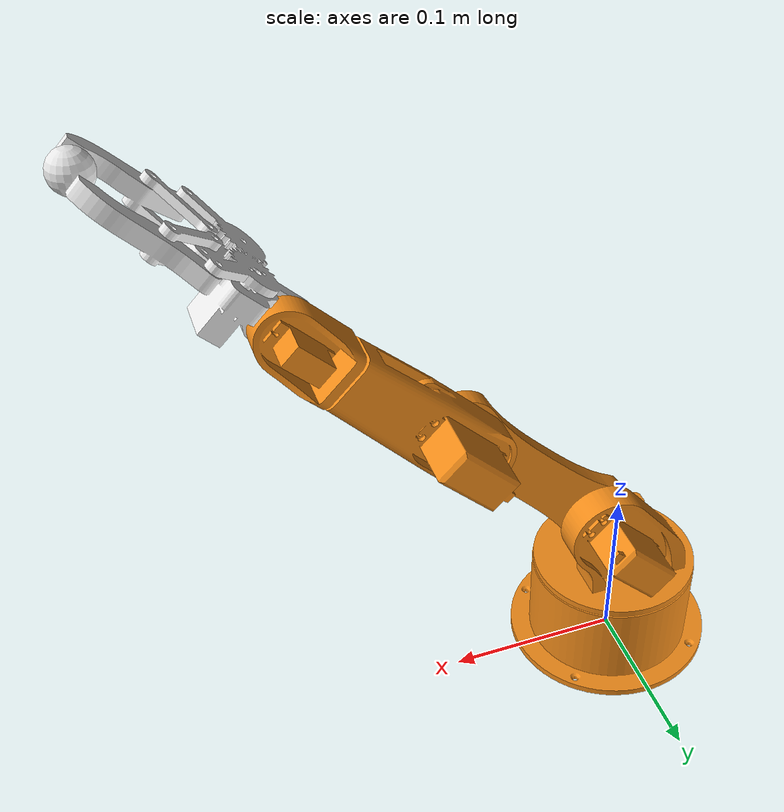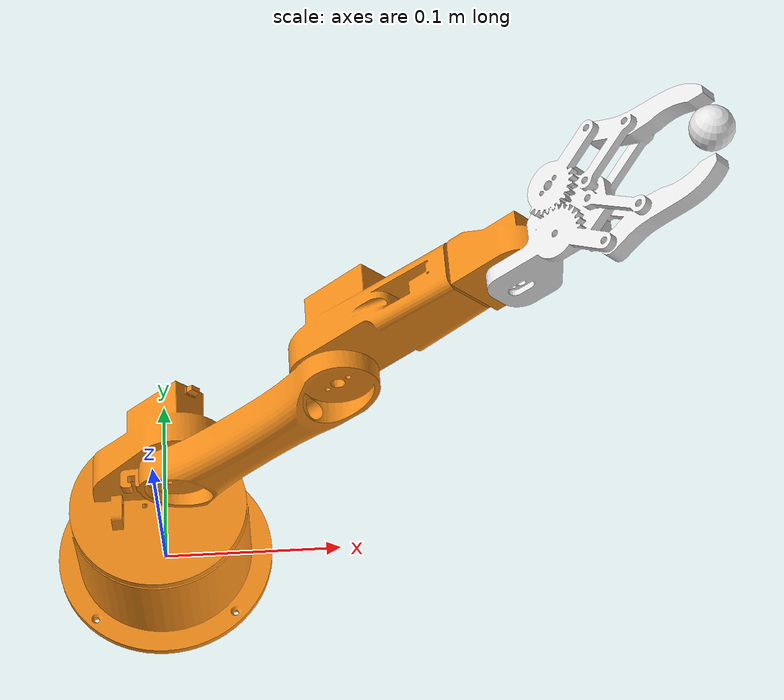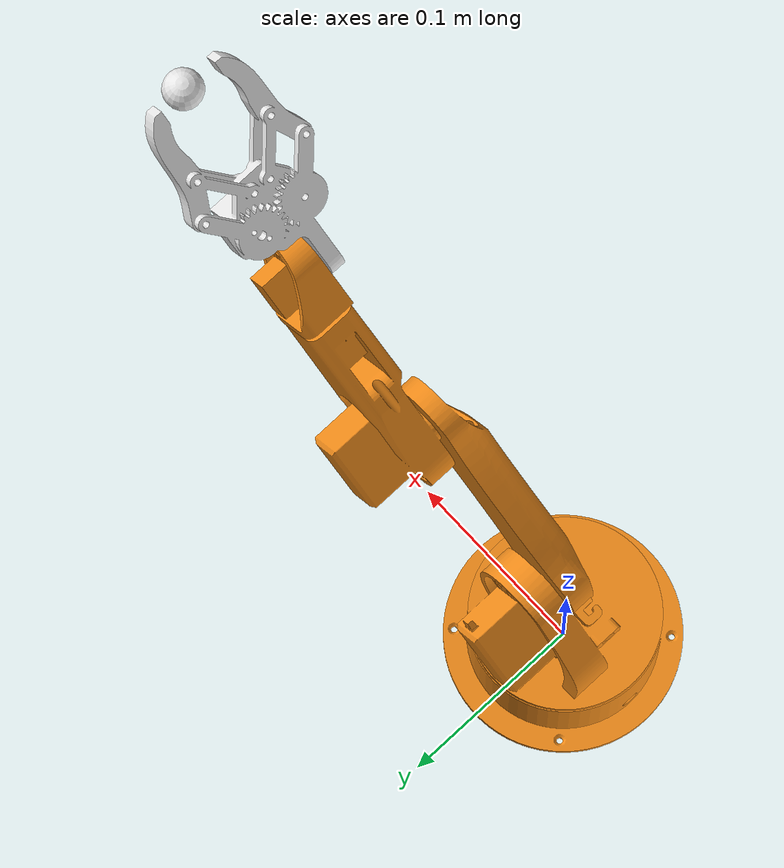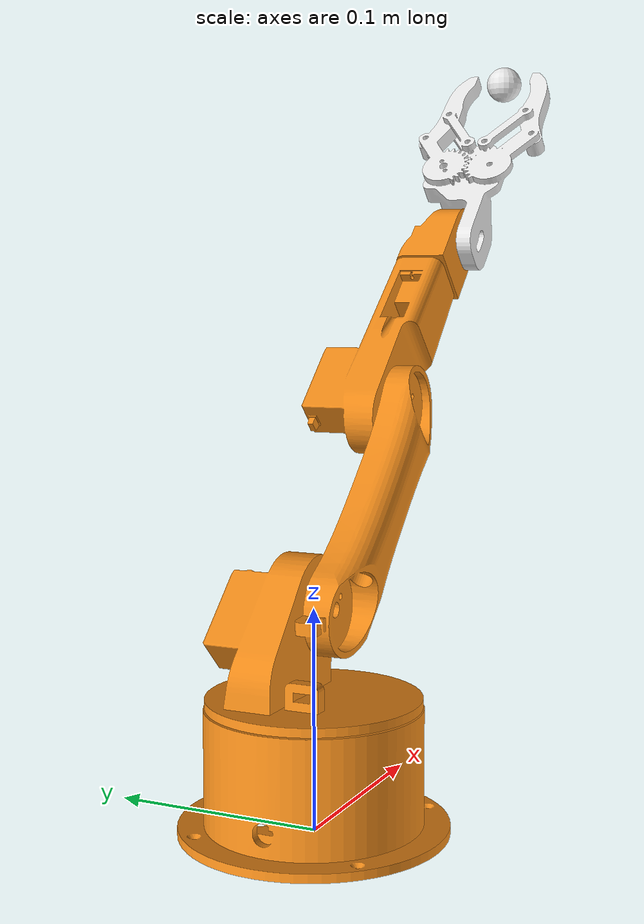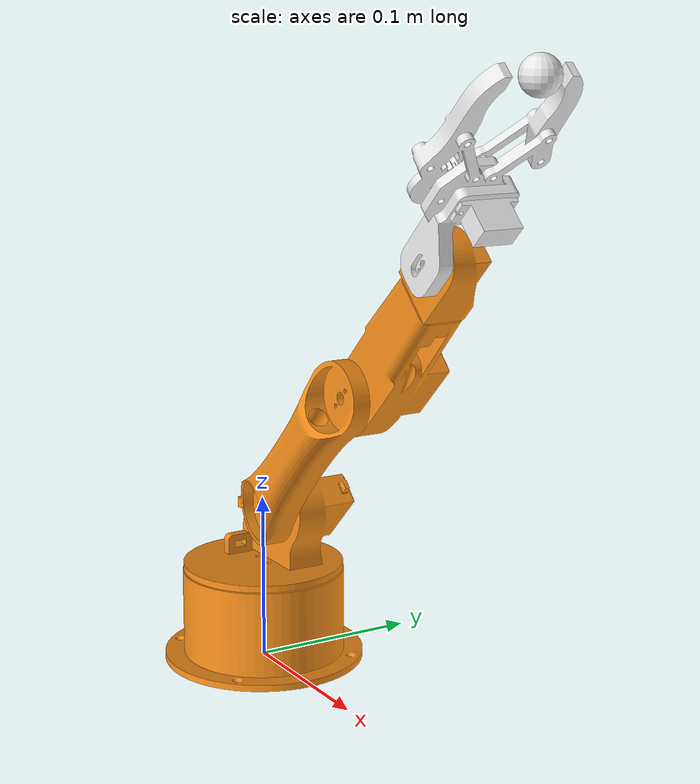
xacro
<?xml version="1.0" ?>
<robot name="robot_arm" xmlns:xacro="http://www.ros.org/wiki/xacro">

<xacro:include filename="$(find robot_arm_description)/urdf/materials.xacro" />
<xacro:include filename="$(find robot_arm_description)/urdf/robot_arm.trans" />
<xacro:include filename="$(find robot_arm_description)/urdf/robot_arm.gazebo" />
<link name="world"/>
<link name="base_link">
  <inertial>
    <origin xyz="0.0024607011550564013 6.455733015215033e-10 0.0241964579063244" rpy="0 0 0"/>
    <mass value="0.13769209908471902"/>
	<inertia ixx="0" iyy="0" izz="0" ixy="0" iyz="0" ixz="0"/>
  </inertial>
  <visual>
    <origin xyz="0 0 0" rpy="0 0 0"/>
    <geometry>
      <mesh filename="package://robot_arm_description/meshes/base_link.stl" scale="0.001 0.001 0.001"/>
    </geometry>
  </visual>
  <collision>
    <origin xyz="0 0 0" rpy="0 0 0"/>
    <geometry>
      <mesh filename="package://robot_arm_description/meshes/base_link.stl" scale="0.001 0.001 0.001"/>
    </geometry>
  </collision>
</link>

<link name="waist_1">
  <inertial>
    <origin xyz="0.00318602649091635 0.013877747356906538 0.022689548276635066" rpy="0 0 0"/>
    <mass value="0.10800159155411357"/>
    <inertia ixx="7.4e-05" iyy="7.5e-05" izz="7.9e-05" ixy="-3e-06" iyz="-1.4e-05" ixz="-1.1e-05"/>
  </inertial>
  <visual>
    <origin xyz="0.0 -0.0 -0.0566" rpy="0 0 0"/>
    <geometry>
      <mesh filename="package://robot_arm_description/meshes/waist_1.stl" scale="0.001 0.001 0.001"/>
    </geometry>
  </visual>
  <collision>
    <origin xyz="0.0 -0.0 -0.0566" rpy="0 0 0"/>
    <geometry>
      <mesh filename="package://robot_arm_description/meshes/waist_1.stl" scale="0.001 0.001 0.001"/>
    </geometry>
  </collision>
</link>

<link name="arm1_1">
  <inertial>
    <origin xyz="0.04133751613396197 -0.007768202679351965 0.04152238032046518" rpy="0 0 0"/>
    <mass value="0.505446604180645"/>
    <inertia ixx="0.000463" iyy="0.000903" izz="0.000474" ixy="-1e-06" iyz="-1e-06" ixz="-0.000396"/>
  </inertial>
  <visual>
    <origin xyz="-0.013742 -0.0018 -0.097053" rpy="0 0 0"/>
    <geometry>
      <mesh filename="package://robot_arm_description/meshes/arm1_1.stl" scale="0.001 0.001 0.001"/>
    </geometry>
  </visual>
  <collision>
    <origin xyz="-0.013742 -0.0018 -0.097053" rpy="0 0 0"/>
    <geometry>
      <mesh filename="package://robot_arm_description/meshes/arm1_1.stl" scale="0.001 0.001 0.001"/>
    </geometry>
  </collision>
</link>

<link name="arm2_1">
  <inertial>
    <origin xyz="0.021875310017626437 0.01671146992191255 0.022052083955411417" rpy="0 0 0"/>
    <mass value="0.09671321602707647"/>
    <inertia ixx="6.6e-05" iyy="0.000103" izz="6.6e-05" ixy="8e-06" iyz="8e-06" ixz="-4.3e-05"/>
  </inertial>
  <visual>
    <origin xyz="-0.098595 -0.0018 -0.181906" rpy="0 0 0"/>
    <geometry>
      <mesh filename="package://robot_arm_description/meshes/arm2_1.stl" scale="0.001 0.001 0.001"/>
    </geometry>
  </visual>
  <collision>
    <origin xyz="-0.098595 -0.0018 -0.181906" rpy="0 0 0"/>
    <geometry>
      <mesh filename="package://robot_arm_description/meshes/arm2_1.stl" scale="0.001 0.001 0.001"/>
    </geometry>
  </collision>
</link>

<link name="arm3_1">
  <inertial>
    <origin xyz="0.010225315136705243 -0.0030655198679682485 0.017341165454192953" rpy="0 0 0"/>
    <mass value="0.025038543338458022"/>
    <inertia ixx="4e-06" iyy="6e-06" izz="4e-06" ixy="0.0" iyz="0.0" ixz="-1e-06"/>
  </inertial>
  <visual>
    <origin xyz="-0.166936 -0.0125 -0.243106" rpy="0 0 0"/>
    <geometry>
      <mesh filename="package://robot_arm_description/meshes/arm3_1.stl" scale="0.001 0.001 0.001"/>
    </geometry>
  </visual>
  <collision>
    <origin xyz="-0.166936 -0.0125 -0.243106" rpy="0 0 0"/>
    <geometry>
      <mesh filename="package://robot_arm_description/meshes/arm3_1.stl" scale="0.001 0.001 0.001"/>
    </geometry>
  </collision>
</link>

<link name="gripper_1">
  <inertial>
    <origin xyz="0.028485280332901375 0.004846546679879509 0.04072672947992795" rpy="0 0 0"/>
    <mass value="0.044561931204964"/>
    <inertia ixx="4.2e-05" iyy="4.7e-05" izz="3.1e-05" ixy="-1e-06" iyz="-1e-06" ixz="-2e-05"/>
  </inertial>
  <visual>
    <origin xyz="-0.1832 0.00285 -0.266441" rpy="0 0 0"/>
    <geometry>
      <mesh filename="package://robot_arm_description/meshes/gripper_1.stl" scale="0.001 0.001 0.001"/>
    </geometry>
  </visual>
  <collision>
    <origin xyz="-0.1832 0.00285 -0.266441" rpy="0 0 0"/>
    <geometry>
      <mesh filename="package://robot_arm_description/meshes/gripper_1.stl" scale="0.001 0.001 0.001"/>
    </geometry>
  </collision>
</link>

<link name="gripper_2">
  <inertial>
    <origin xyz="0.0 0.0 0.0" rpy="0 0 0"/>
    <mass value="0.0"/>
    <inertia ixx="0.0" iyy="0.0" izz="0.0" ixy="0.0" iyz="0.0" ixz="0.0"/>
  </inertial>
  <visual>
    <origin xyz="0.0 0.0 0.0" rpy="0 0 0"/>
    <geometry>
      <sphere radius="0.01"/>
    </geometry>
  </visual>
  <collision>
    <origin xyz="0.0 0.0 0.0" rpy="0 0 0"/>
    <geometry>
      <sphere radius="0.00"/>
    </geometry>
  </collision>
</link>

<joint name="base_joint" type="revolute">
  <origin xyz="0.0 0.0 0.0566" rpy="0 0 0"/>
  <parent link="base_link"/>
  <child link="waist_1"/>
  <axis xyz="-0.0 0.0 1.0"/>
  <limit upper="1.570796" lower="-1.570796" effort="1.075" velocity="2"/>
</joint>

<joint name="waist_joint" type="revolute">
  <origin xyz="0.013742 0.0018 0.040453" rpy="0 0 0"/>
  <parent link="waist_1"/>
  <child link="arm1_1"/>
  <axis xyz="0.0 -1.0 0.0"/>
  <limit upper="1.570796" lower="-1.27409" effort="1.075" velocity="2"/>
</joint>

<joint name="arm1_joint" type="revolute">
  <origin xyz="0.084853 0.0 0.084853" rpy="0 0 0"/>
  <parent link="arm1_1"/>
  <child link="arm2_1"/>
  <axis xyz="-0.0 1.0 -0.0"/>
  <limit upper="1.570796" lower="-1.570796" effort="1.075" velocity="2"/>
</joint>

<joint name="arm2_joint" type="revolute">
  <origin xyz="0.068341 0.0107 0.0612" rpy="0 0 0"/>
  <parent link="arm2_1"/>
  <child link="arm3_1"/>
  <axis xyz="0.707107 0.0 0.707107"/>
  <limit upper="1.570796" lower="-1.570796" effort="1.075" velocity="2"/>
</joint>

<joint name="arm3_joint" type="revolute">
  <origin xyz="0.016264 -0.01535 0.023335" rpy="0 0 0"/>
  <parent link="arm3_1"/>
  <child link="gripper_1"/>
  <axis xyz="-0.0 -1.0 0.0"/>
  <limit upper="1.570796" lower="-1.570796" effort="1.075" velocity="2"/>
</joint>

<joint name="fixed" type="fixed">
    <parent link="world"/>
    <child link="base_link"/>
    <origin xyz="0.0 0.0 0.0" rpy="0 0 0"/>
  </joint>

<joint name="end_eff" type="revolute">
    <origin xyz="0.076264 0.005 0.093335" rpy="0 0 0"/>
    <parent link="gripper_1"/>
    <child link="gripper_2"/>
    <axis xyz="-0.0 -1.0 0.0"/>
    <limit upper="1.570796" lower="-1.570796" effort="1.075" velocity="2"/>
</joint>

</robot>

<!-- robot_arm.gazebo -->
<robot name="robot_arm" xmlns:xacro="http://www.ros.org/wiki/xacro" >

<xacro:property name="body_color" value="Gazebo/Orange" />

<gazebo>
  <plugin name="control" filename="libgazebo_ros_control.so">
    <robotNamespace>/robot_arm</robotNamespace>
  </plugin>
</gazebo>
<gazebo reference="base_link">
  <material>${body_color}</material>
  <mu1>0.2</mu1>
  <mu2>0.2</mu2>
  <selfCollide>true</selfCollide>
  <gravity>true</gravity>
</gazebo>

<gazebo reference="waist_1">
  <material>${body_color}</material>
  <mu1>0.2</mu1>
  <mu2>0.2</mu2>
  <selfCollide>true</selfCollide>
</gazebo>

<gazebo reference="arm1_1">
  <material>${body_color}</material>
  <mu1>0.2</mu1>
  <mu2>0.2</mu2>
  <selfCollide>true</selfCollide>
</gazebo>

<gazebo reference="arm2_1">
  <material>${body_color}</material>
  <mu1>0.2</mu1>
  <mu2>0.2</mu2>
  <selfCollide>true</selfCollide>
</gazebo>

<gazebo reference="arm3_1">
  <material>${body_color}</material>
  <mu1>0.2</mu1>
  <mu2>0.2</mu2>
  <selfCollide>true</selfCollide>
</gazebo>

<gazebo reference="gripper_1">
  <material>Gazebo/White</material>
  <mu1>0.2</mu1>
  <mu2>0.2</mu2>
  <selfCollide>true</selfCollide>
</gazebo>

<gazebo reference="gripper_2">
  <material>Gazebo/White</material>
  <mu1>0.2</mu1>
  <mu2>0.2</mu2>
  <selfCollide>true</selfCollide>
</gazebo>

</robot>
